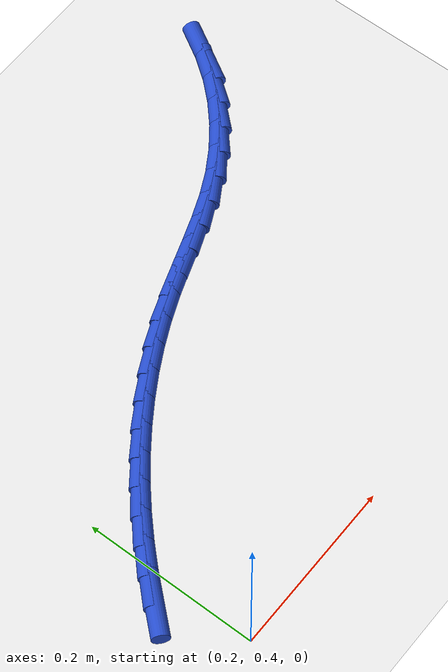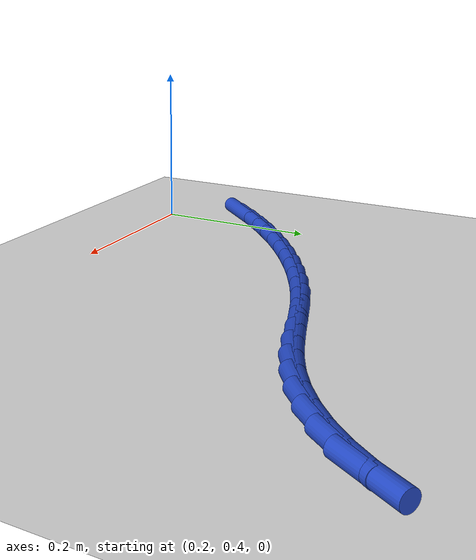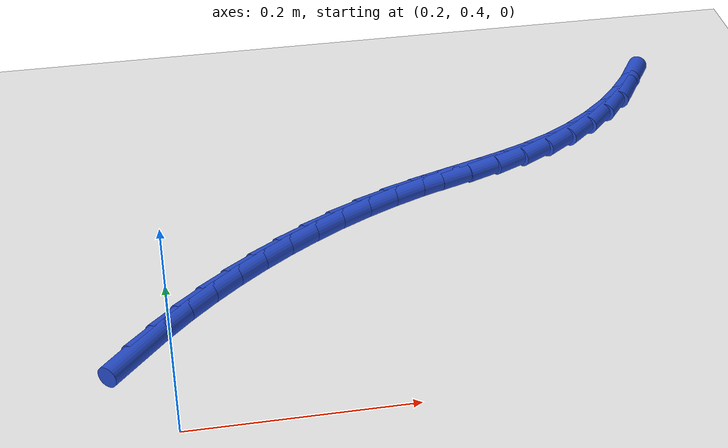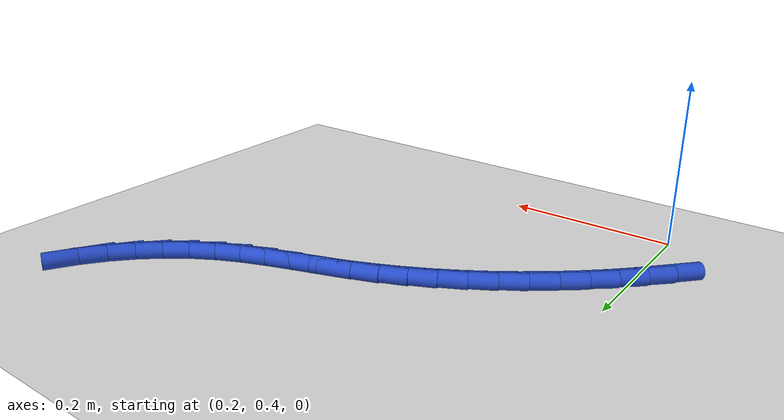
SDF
<sdf version="1.6">
 <world name="default">
  <model name="ground_plane">
   <static>1</static>
   <link name="link">
    <collision name="collision">
     <geometry><plane><normal>0 0 1</normal><size>100 100</size></plane></geometry>
     <surface><friction><ode><mu>100</mu><mu2>50</mu2></ode></friction></surface>
    </collision>
    <visual name="visual">
     <cast_shadows>0</cast_shadows>
     <geometry><plane><normal>0 0 1</normal><size>100 100</size></plane></geometry>
     <material>
      <script><uri>file://media/materials/scripts/gazebo.material</uri><name>Gazebo/WhiteGlow</name></script>
     </material>
    </visual>
   </link>
  </model>
  <model name="line">
   <link name="link_17">
    <pose>0.17102821188967152 0.4971432067957281 0.01 0 1.57 0.843990860754449</pose>
    <collision name="collision">
     <geometry><cylinder><radius>0.01</radius><length>0.08</length></cylinder></geometry>
    </collision>
    <visual name="visual">
     <material>
      <script><name>Gazebo/Blue</name><uri>file://media/materials/scripts/gazebo.material</uri></script>
     </material>
     <geometry><cylinder><radius>0.01</radius><length>0.08</length></cylinder></geometry>
    </visual>
   </link>
   <link name="link_18">
    <pose>0.1926391008912522 0.5214474714162946 0.01 0 1.57 0.8016734816768494</pose>
    <collision name="collision">
     <geometry><cylinder><radius>0.01</radius><length>0.08</length></cylinder></geometry>
    </collision>
    <visual name="visual">
     <material>
      <script><name>Gazebo/Blue</name><uri>file://media/materials/scripts/gazebo.material</uri></script>
     </material>
     <geometry><cylinder><radius>0.01</radius><length>0.08</length></cylinder></geometry>
    </visual>
   </link>
   <link name="link_19">
    <pose>0.21525652736675335 0.5448133570180047 0.01 0 1.57 0.7592165843336431</pose>
    <collision name="collision">
     <geometry><cylinder><radius>0.01</radius><length>0.08</length></cylinder></geometry>
    </collision>
    <visual name="visual">
     <material>
      <script><name>Gazebo/Blue</name><uri>file://media/materials/scripts/gazebo.material</uri></script>
     </material>
     <geometry><cylinder><radius>0.01</radius><length>0.08</length></cylinder></geometry>
    </visual>
   </link>
   <link name="link_20">
    <pose>0.23882332867437006 0.5671773429423599 0.01 0 1.57 0.7164382973901072</pose>
    <collision name="collision">
     <geometry><cylinder><radius>0.01</radius><length>0.08</length></cylinder></geometry>
    </collision>
    <visual name="visual">
     <material>
      <script><name>Gazebo/Blue</name><uri>file://media/materials/scripts/gazebo.material</uri></script>
     </material>
     <geometry><cylinder><radius>0.01</radius><length>0.08</length></cylinder></geometry>
    </visual>
   </link>
   <link name="link_21">
    <pose>0.26328234217229746 0.5884759085308615 0.01 0 1.57 0.673156917025306</pose>
    <collision name="collision">
     <geometry><cylinder><radius>0.01</radius><length>0.08</length></cylinder></geometry>
    </collision>
    <visual name="visual">
     <material>
      <script><name>Gazebo/Blue</name><uri>file://media/materials/scripts/gazebo.material</uri></script>
     </material>
     <geometry><cylinder><radius>0.01</radius><length>0.08</length></cylinder></geometry>
    </visual>
   </link>
   <link name="link_22">
    <pose>0.2885764052187306 0.6086455331250114 0.01 0 1.57 0.629191154778254</pose>
    <collision name="collision">
     <geometry><cylinder><radius>0.01</radius><length>0.08</length></cylinder></geometry>
    </collision>
    <visual name="visual">
     <material>
      <script><name>Gazebo/Blue</name><uri>file://media/materials/scripts/gazebo.material</uri></script>
     </material>
     <geometry><cylinder><radius>0.01</radius><length>0.08</length></cylinder></geometry>
    </visual>
   </link>
   <link name="link_23">
    <pose>0.3146483551718646 0.6276226960663109 0.01 0 1.57 0.5843607171446917</pose>
    <collision name="collision">
     <geometry><cylinder><radius>0.01</radius><length>0.08</length></cylinder></geometry>
    </collision>
    <visual name="visual">
     <material>
      <script><name>Gazebo/Blue</name><uri>file://media/materials/scripts/gazebo.material</uri></script>
     </material>
     <geometry><cylinder><radius>0.01</radius><length>0.08</length></cylinder></geometry>
    </visual>
   </link>
   <link name="link_24">
    <pose>0.34144102938989457 0.6453438766962616 0.01 0 1.57 0.5384873532756794</pose>
    <collision name="collision">
     <geometry><cylinder><radius>0.01</radius><length>0.08</length></cylinder></geometry>
    </collision>
    <visual name="visual">
     <material>
      <script><name>Gazebo/Blue</name><uri>file://media/materials/scripts/gazebo.material</uri></script>
     </material>
     <geometry><cylinder><radius>0.01</radius><length>0.08</length></cylinder></geometry>
    </visual>
   </link>
   <link name="link_25">
    <pose>0.3688972652310155 0.6617455543563648 0.01 0 1.57 0.49139651964454045</pose>
    <collision name="collision">
     <geometry><cylinder><radius>0.01</radius><length>0.08</length></cylinder></geometry>
    </collision>
    <visual name="visual">
     <material>
      <script><name>Gazebo/Blue</name><uri>file://media/materials/scripts/gazebo.material</uri></script>
     </material>
     <geometry><cylinder><radius>0.01</radius><length>0.08</length></cylinder></geometry>
    </visual>
   </link>
   <link name="link_26">
    <pose>0.39695990005342263 0.6767642083881223 0.01 0 1.57 0.4429198200799857</pose>
    <collision name="collision">
     <geometry><cylinder><radius>0.01</radius><length>0.08</length></cylinder></geometry>
    </collision>
    <visual name="visual">
     <material>
      <script><name>Gazebo/Blue</name><uri>file://media/materials/scripts/gazebo.material</uri></script>
     </material>
     <geometry><cylinder><radius>0.01</radius><length>0.08</length></cylinder></geometry>
    </visual>
   </link>
   <link name="link_27">
    <pose>0.4255717712153111 0.6903363181330358 0.01 0 1.57 0.3929024159851765</pose>
    <collision name="collision">
     <geometry><cylinder><radius>0.01</radius><length>0.08</length></cylinder></geometry>
    </collision>
    <visual name="visual">
     <material>
      <script><name>Gazebo/Blue</name><uri>file://media/materials/scripts/gazebo.material</uri></script>
     </material>
     <geometry><cylinder><radius>0.01</radius><length>0.08</length></cylinder></geometry>
    </visual>
   </link>
   <link name="link_28">
    <pose>0.4546756800937663 0.7023984856530187 0.01 0 1.57 0.3479335227404338</pose>
    <collision name="collision">
     <geometry><cylinder><radius>0.01</radius><length>0.08</length></cylinder></geometry>
    </collision>
    <visual name="visual">
     <material>
      <script><name>Gazebo/Blue</name><uri>file://media/materials/scripts/gazebo.material</uri></script>
     </material>
     <geometry><cylinder><radius>0.01</radius><length>0.08</length></cylinder></geometry>
    </visual>
   </link>
   <link name="link_29">
    <pose>0.4841549230970011 0.713090266015008 0.01 0 1.57 0.3285991722100279</pose>
    <collision name="collision">
     <geometry><cylinder><radius>0.01</radius><length>0.08</length></cylinder></geometry>
    </collision>
    <visual name="visual">
     <material>
      <script><name>Gazebo/Blue</name><uri>file://media/materials/scripts/gazebo.material</uri></script>
     </material>
     <geometry><cylinder><radius>0.01</radius><length>0.08</length></cylinder></geometry>
    </visual>
   </link>
   <link name="link_30">
    <pose>0.5137119455207557 0.7231680413750641 0.01 0 1.57 0.33913069611313496</pose>
    <collision name="collision">
     <geometry><cylinder><radius>0.01</radius><length>0.08</length></cylinder></geometry>
    </collision>
    <visual name="visual">
     <material>
      <script><name>Gazebo/Blue</name><uri>file://media/materials/scripts/gazebo.material</uri></script>
     </material>
     <geometry><cylinder><radius>0.01</radius><length>0.08</length></cylinder></geometry>
    </visual>
   </link>
   <link name="link_31">
    <pose>0.5430149612038004 0.733504946778795 0.01 0 1.57 0.37997436462901174</pose>
    <collision name="collision">
     <geometry><cylinder><radius>0.01</radius><length>0.08</length></cylinder></geometry>
    </collision>
    <visual name="visual">
     <material>
      <script><name>Gazebo/Blue</name><uri>file://media/materials/scripts/gazebo.material</uri></script>
     </material>
     <geometry><cylinder><radius>0.01</radius><length>0.08</length></cylinder></geometry>
    </visual>
   </link>
   <link name="link_32">
    <pose>0.5717321839849059 0.7449741172718083 0.01 0 1.57 0.4513140826915281</pose>
    <collision name="collision">
     <geometry><cylinder><radius>0.01</radius><length>0.08</length></cylinder></geometry>
    </collision>
    <visual name="visual">
     <material>
      <script><name>Gazebo/Blue</name><uri>file://media/materials/scripts/gazebo.material</uri></script>
     </material>
     <geometry><cylinder><radius>0.01</radius><length>0.08</length></cylinder></geometry>
    </visual>
   </link>
   <link name="link_33">
    <pose>0.5995318759896858 0.7584479833012294 0.01 0 1.57 0.5445255486009554</pose>
    <collision name="collision">
     <geometry><cylinder><radius>0.01</radius><length>0.08</length></cylinder></geometry>
    </collision>
    <visual name="visual">
     <material>
      <script><name>Gazebo/Blue</name><uri>file://media/materials/scripts/gazebo.material</uri></script>
     </material>
     <geometry><cylinder><radius>0.01</radius><length>0.08</length></cylinder></geometry>
    </visual>
   </link>
   <link name="link_34">
    <pose>0.6261002040547045 0.774537710934754 0.01 0 1.57 0.6400494288537218</pose>
    <collision name="collision">
     <geometry><cylinder><radius>0.01</radius><length>0.08</length></cylinder></geometry>
    </collision>
    <visual name="visual">
     <material>
      <script><name>Gazebo/Blue</name><uri>file://media/materials/scripts/gazebo.material</uri></script>
     </material>
     <geometry><cylinder><radius>0.01</radius><length>0.08</length></cylinder></geometry>
    </visual>
   </link>
   <link name="link_35">
    <pose>0.6511679353271846 0.7932036614033307 0.01 0 1.57 0.7358562967704068</pose>
    <collision name="collision">
     <geometry><cylinder><radius>0.01</radius><length>0.08</length></cylinder></geometry>
    </collision>
    <visual name="visual">
     <material>
      <script><name>Gazebo/Blue</name><uri>file://media/materials/scripts/gazebo.material</uri></script>
     </material>
     <geometry><cylinder><radius>0.01</radius><length>0.08</length></cylinder></geometry>
    </visual>
   </link>
   <link name="link_36">
    <pose>0.6744726655549093 0.8143065534420006 0.01 0 1.57 0.8328386658747416</pose>
    <collision name="collision">
     <geometry><cylinder><radius>0.01</radius><length>0.08</length></cylinder></geometry>
    </collision>
    <visual name="visual">
     <material>
      <script><name>Gazebo/Blue</name><uri>file://media/materials/scripts/gazebo.material</uri></script>
     </material>
     <geometry><cylinder><radius>0.01</radius><length>0.08</length></cylinder></geometry>
    </visual>
   </link>
   <link name="link_37">
    <pose>0.6957519904856617 0.8377071057858058 0.01 0 1.57 0.9317593012357724</pose>
    <collision name="collision">
     <geometry><cylinder><radius>0.01</radius><length>0.08</length></cylinder></geometry>
    </collision>
    <visual name="visual">
     <material>
      <script><name>Gazebo/Blue</name><uri>file://media/materials/scripts/gazebo.material</uri></script>
     </material>
     <geometry><cylinder><radius>0.01</radius><length>0.08</length></cylinder></geometry>
    </visual>
   </link>
   <link name="link_38">
    <pose>0.7147435058672249 0.863266037169787 0.01 0 1.57 1.0331886598580435</pose>
    <collision name="collision">
     <geometry><cylinder><radius>0.01</radius><length>0.08</length></cylinder></geometry>
    </collision>
    <visual name="visual">
     <material>
      <script><name>Gazebo/Blue</name><uri>file://media/materials/scripts/gazebo.material</uri></script>
     </material>
     <geometry><cylinder><radius>0.01</radius><length>0.08</length></cylinder></geometry>
    </visual>
   </link>
  </model>
 </world>
</sdf>
